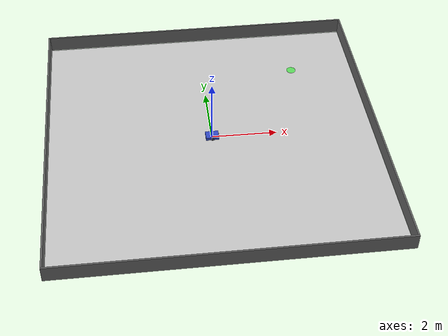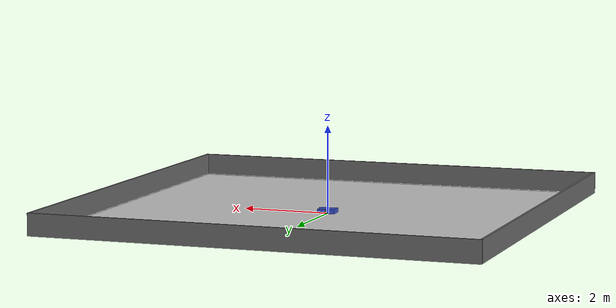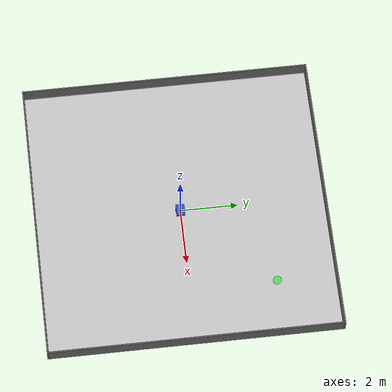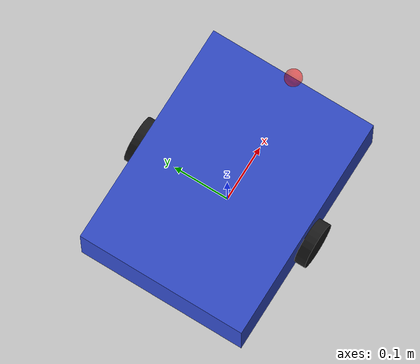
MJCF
<mujoco model="ammr_simple">
  <compiler angle="radian" coordinate="local"/>

  <option timestep="0.01" gravity="0 0 -9.81" integrator="implicit">
    <flag warmstart="enable"/>
  </option>

  <default>
    <joint armature="0.01" damping="0.1"/>
    <geom friction="1.0 0.005 0.0001" condim="3" conaffinity="1" contype="1"/>
    <motor ctrllimited="true" ctrlrange="-10 10"/>
  </default>

  <asset>
    <!-- Ground texture -->
    <texture name="grid" type="2d" builtin="checker" rgb1="0.9 0.9 0.9" rgb2="0.7 0.7 0.7"
             width="512" height="512"/>
    <material name="grid_mat" texture="grid" texrepeat="8 8" texuniform="true"/>

    <!-- Robot body material -->
    <material name="chassis_mat" rgba="0.2 0.3 0.8 1.0"/>
    <material name="wheel_mat" rgba="0.1 0.1 0.1 1.0"/>
    <material name="caster_mat" rgba="0.5 0.5 0.5 1.0"/>
  </asset>

  <worldbody>
    <!-- Ground Plane (10m x 10m arena)               -->
    <geom name="floor" type="plane" size="5 5 0.01" material="grid_mat"
          conaffinity="1" contype="1"/>

    <!-- Arena Walls (10m x 10m, height 0.5m, thickness 0.05m) -->
    <geom name="wall_north" type="box" pos="0 5.025 0.25" size="5.05 0.025 0.25"
          rgba="0.4 0.4 0.4 1" conaffinity="1" contype="1"/>
    <geom name="wall_south" type="box" pos="0 -5.025 0.25" size="5.05 0.025 0.25"
          rgba="0.4 0.4 0.4 1" conaffinity="1" contype="1"/>
    <geom name="wall_east" type="box" pos="5.025 0 0.25" size="0.025 5.0 0.25"
          rgba="0.4 0.4 0.4 1" conaffinity="1" contype="1"/>
    <geom name="wall_west" type="box" pos="-5.025 0 0.25" size="0.025 5.0 0.25"
          rgba="0.4 0.4 0.4 1" conaffinity="1" contype="1"/>

    <!-- Goal marker (visual only, will be repositioned by env) -->
    <geom name="goal_marker" type="cylinder" pos="3 3 0.005" size="0.15 0.005"
          rgba="0.0 1.0 0.0 0.5" contype="0" conaffinity="0"/>

    <!-- AMMR Robot Body                              -->
    <body name="chassis" pos="0 0 0.06">
      <freejoint name="root"/>

      <!-- Chassis -->
      <geom name="chassis_geom" type="box" size="0.20 0.15 0.05"
            mass="4.0" material="chassis_mat"/>

      <!-- IMU sensor site (at center of chassis) -->
      <site name="imu_site" pos="0 0 0" size="0.01"/>

      <!-- Left Wheel                                 -->
      <body name="left_wheel" pos="0 0.16 -0.02">
        <joint name="left_wheel_joint" type="hinge" axis="0 1 0"
               damping="0.05" armature="0.005"/>
        <geom name="left_wheel_geom" type="cylinder" size="0.04 0.01"
              mass="0.2" material="wheel_mat"
              euler="1.5708 0 0"
              friction="1.5 0.005 0.0001"/>
      </body>

      <!-- Right Wheel                                -->
      <body name="right_wheel" pos="0 -0.16 -0.02">
        <joint name="right_wheel_joint" type="hinge" axis="0 1 0"
               damping="0.05" armature="0.005"/>
        <geom name="right_wheel_geom" type="cylinder" size="0.04 0.01"
              mass="0.2" material="wheel_mat"
              euler="1.5708 0 0"
              friction="1.5 0.005 0.0001"/>
      </body>

      <!-- Front Caster Wheel                         -->
      <body name="front_caster" pos="0.15 0 -0.04">
        <joint name="front_caster_yaw" type="hinge" axis="0 0 1"
               damping="0.01" armature="0.001"/>
        <geom name="front_caster_geom" type="sphere" size="0.02"
              mass="0.05" material="caster_mat"
              friction="0.5 0.005 0.0001"/>
      </body>

      <!-- Rear Caster Wheel                          -->
      <body name="rear_caster" pos="-0.15 0 -0.04">
        <joint name="rear_caster_yaw" type="hinge" axis="0 0 1"
               damping="0.01" armature="0.001"/>
        <geom name="rear_caster_geom" type="sphere" size="0.02"
              mass="0.05" material="caster_mat"
              friction="0.5 0.005 0.0001"/>
      </body>

      <!-- 1-Ray LiDAR (Front-facing Rangefinder)     -->
      <site name="lidar_site" pos="0.20 0 0.05" euler="0 1.5708 0"
            size="0.015" rgba="1 0 0 0.5"/>

    </body>
  </worldbody>

  <!-- Actuators: Velocity control on each wheel    -->
  <actuator>
    <velocity name="left_wheel_motor" joint="left_wheel_joint"
              kv="5.0" ctrlrange="-10 10"/>
    <velocity name="right_wheel_motor" joint="right_wheel_joint"
              kv="5.0" ctrlrange="-10 10"/>
  </actuator>

  <!-- Sensors                                      -->
  <sensor>
    <!-- Rangefinder: 1-ray LiDAR, max range 10m -->
    <rangefinder name="lidar_front" site="lidar_site" cutoff="10.0"/>

    <!-- IMU sensors -->
    <accelerometer name="imu_accel" site="imu_site"/>
    <gyro name="imu_gyro" site="imu_site"/>

    <!-- Wheel velocities (for odometry) -->
    <jointvel name="left_wheel_vel" joint="left_wheel_joint"/>
    <jointvel name="right_wheel_vel" joint="right_wheel_joint"/>

    <!-- Chassis state -->
    <framepos name="chassis_pos" objtype="site" objname="imu_site"/>
    <framequat name="chassis_quat" objtype="site" objname="imu_site"/>
    <framelinvel name="chassis_linvel" objtype="site" objname="imu_site"/>
    <frameangvel name="chassis_angvel" objtype="site" objname="imu_site"/>
  </sensor>
</mujoco>
